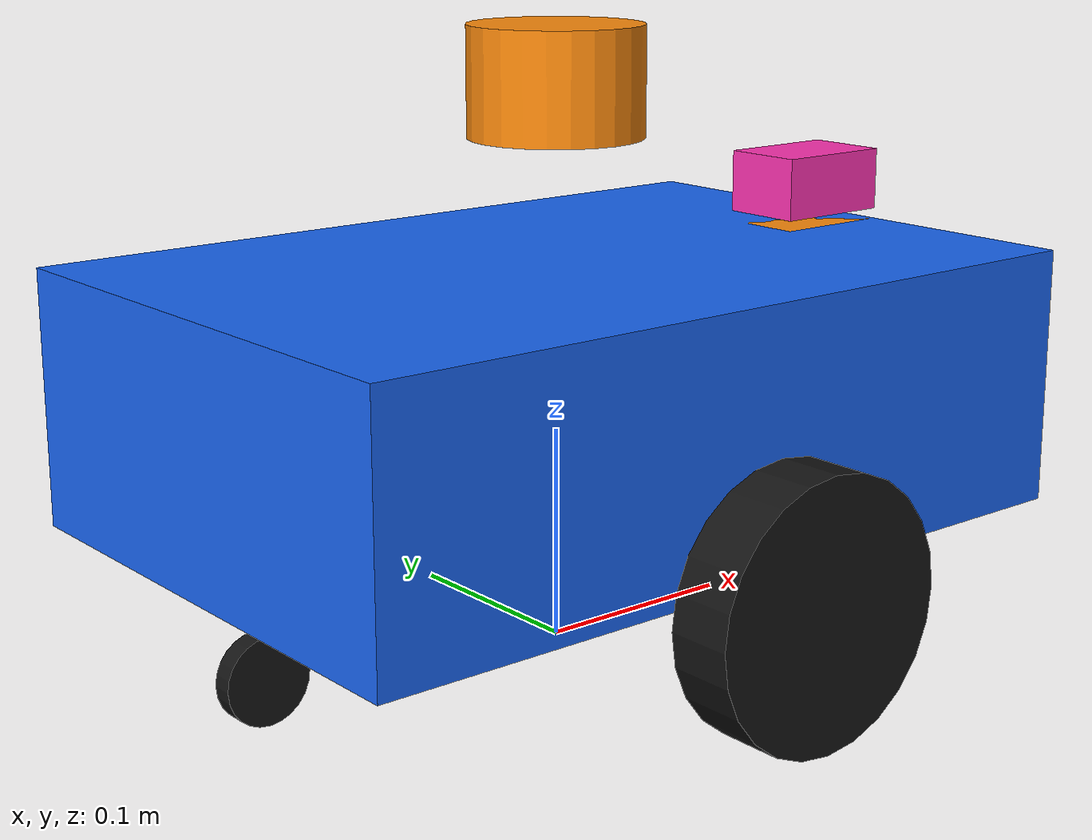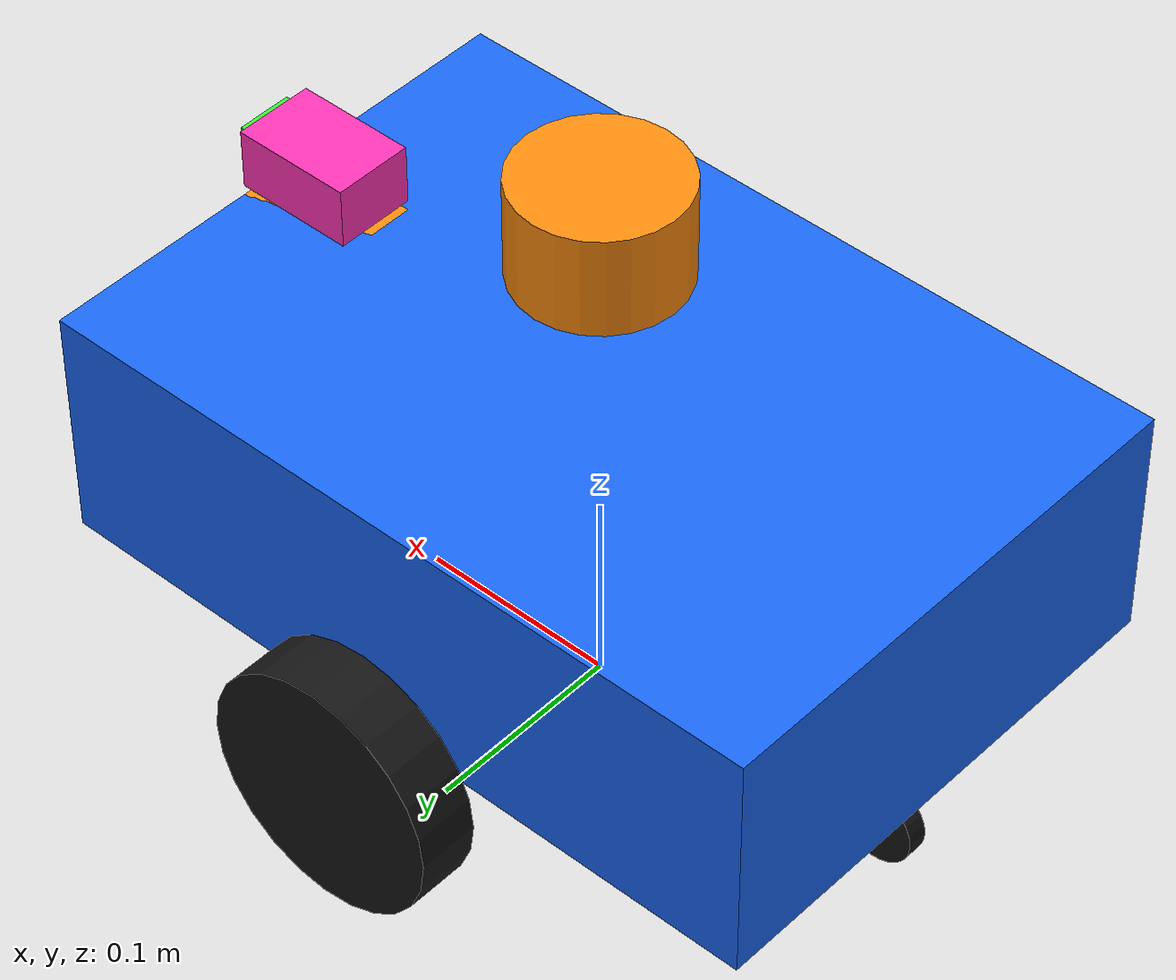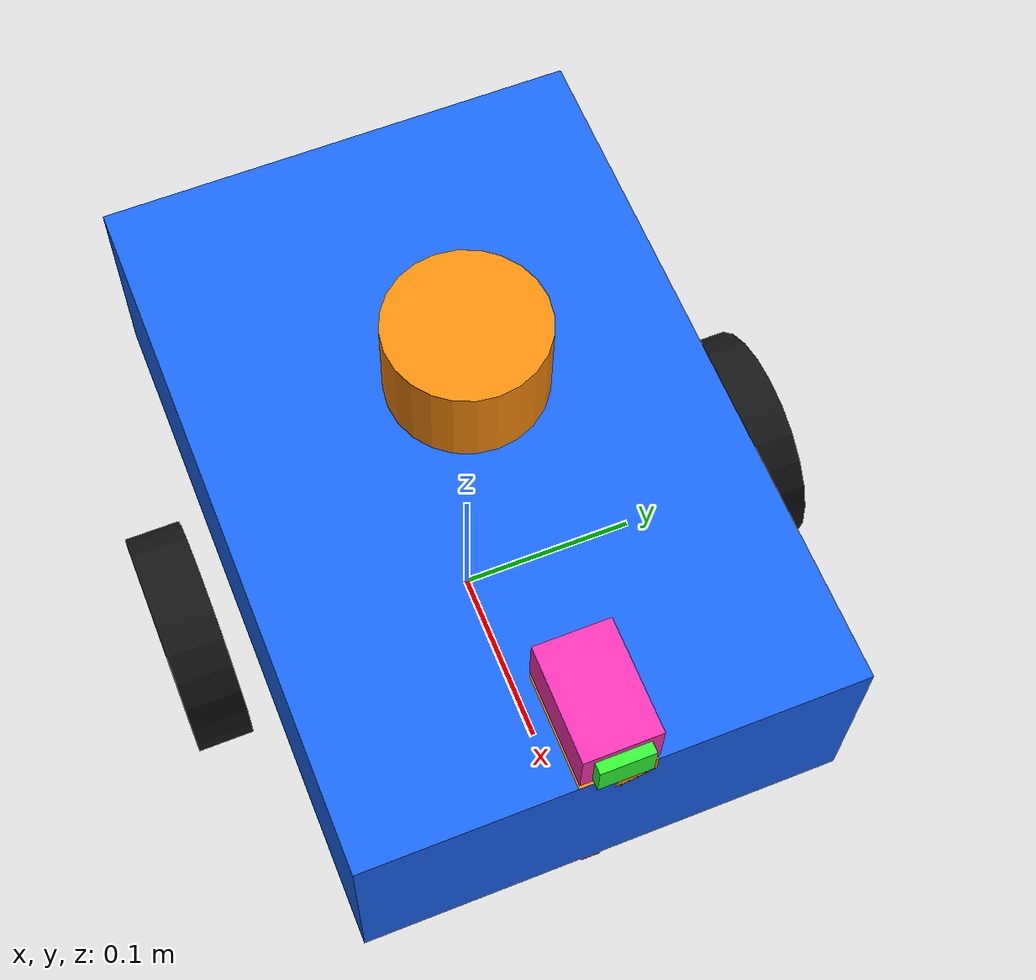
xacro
<?xml version="1.0"?>
<robot xmlns:xacro="http://www.ros.org/wiki/xacro" name="robot">

  <!-- ======= Parameters Body ======= -->
  <xacro:property name="base_length" value="0.38"/>
  <xacro:property name="base_width"  value="0.26"/>
  <xacro:property name="base_height" value="0.12"/>

  <xacro:property name="wheel_radius" value="0.06"/>
  <xacro:property name="wheel_width"  value="0.03"/>

  <xacro:property name="base_link_z" value="${wheel_radius + base_height/2.0}"/>

  <xacro:property name="wheel_separation" value="0.32"/>

  <xacro:property name="lidar_x" value="0.14"/>
  <xacro:property name="lidar_z" value="${base_height/2.0 + 0.08}"/>

  <xacro:property name="caster_radius" value="0.02"/>
  <xacro:property name="caster_x" value="${base_length/2.0 - caster_radius - 0.01}"/>
  <xacro:property name="caster_z" value="${-base_height/2.0 - wheel_radius + caster_radius}"/>

  <xacro:property name="camera_x" value="${base_length/2.0 - 0.03}"/>
  <xacro:property name="camera_y" value="0.0"/>
  <xacro:property name="camera_z" value="${base_height/2.0 + 0.02}"/>

  <!-- ======= Materials  ======= -->
  <material name="body_blue">
    <color rgba="0.10 0.40 0.95 1.0"/>
  </material>

  <material name="accent_orange">
    <color rgba="1.00 0.55 0.05 1.0"/>
  </material>

  <material name="wheel_black">
    <color rgba="0.08 0.08 0.08 1.0"/>
  </material>

  <material name="camera_pink">
    <color rgba="1.0 0.2 0.7 1.0"/>
  </material>

  <material name="camera_green">
    <color rgba="0.2 1.0 0.2 1.0"/>
  </material>

  <!-- ======= Dummy root  ======= -->
  <link name="base_footprint"/>

  <joint name="base_footprint_to_base_link" type="fixed">
    <origin xyz="0 0 ${base_link_z}" rpy="0 0 0"/>
    <parent link="base_footprint"/>
    <child link="base_link"/>
  </joint>

  <!-- ======= Chassis  ======= -->
  <link name="base_link">
    <visual>
      <origin xyz="0 0 0" rpy="0 0 0"/>
      <geometry>
        <box size="${base_length} ${base_width} ${base_height}"/>
      </geometry>
      <material name="body_blue"/>
    </visual>

    <visual name="front_marker">
      <origin xyz="${base_length/2.0 - 0.03} 0 ${base_height/2.0 - 0.02}" rpy="0 0 0"/>
      <geometry>
        <box size="0.06 0.04 0.04"/>
      </geometry>
      <material name="accent_orange"/>
    </visual>

    <collision>
      <origin xyz="0 0 0" rpy="0 0 0"/>
      <geometry>
        <box size="${base_length-0.04} ${base_width-0.04} ${base_height-0.04}"/>
      </geometry>
    </collision>

    <inertial>
      <origin xyz="0 0 0" rpy="0 0 0"/>
      <mass value="10.0"/>
      <inertia ixx="0.12" ixy="0.0" ixz="0.0" iyy="0.18" iyz="0.0" izz="0.22"/>
    </inertial>
  </link>

  <!-- ======= Wheels ======= -->
  <link name="left_wheel_link">
    <visual>
      <origin xyz="0 0 0" rpy="-1.57079632679 0 0"/>
      <geometry>
        <cylinder radius="${wheel_radius}" length="${wheel_width}"/>
      </geometry>
      <material name="wheel_black"/>
    </visual>
    <collision>
      <origin xyz="0 0 0" rpy="-1.57079632679 0 0"/>
      <geometry>
        <cylinder radius="${wheel_radius}" length="${wheel_width}"/>
      </geometry>
    </collision>
    <inertial>
      <mass value="0.8"/>
      <inertia ixx="0.0010" ixy="0.0" ixz="0.0" iyy="0.0010" iyz="0.0" izz="0.0010"/>
    </inertial>
  </link>

  <link name="right_wheel_link">
    <visual>
      <origin xyz="0 0 0" rpy="-1.57079632679 0 0"/>
      <geometry>
        <cylinder radius="${wheel_radius}" length="${wheel_width}"/>
      </geometry>
      <material name="wheel_black"/>
    </visual>
    <collision>
      <origin xyz="0 0 0" rpy="-1.57079632679 0 0"/>
      <geometry>
        <cylinder radius="${wheel_radius}" length="${wheel_width}"/>
      </geometry>
    </collision>
    <inertial>
      <mass value="0.8"/>
      <inertia ixx="0.0010" ixy="0.0" ixz="0.0" iyy="0.0010" iyz="0.0" izz="0.0010"/>
    </inertial>
  </link>

  <!-- Caster swivel link -->
  <link name="caster_swivel_front_link">
    <inertial>
      <origin xyz="0 0 0" rpy="0 0 0"/>
      <mass value="0.05"/>
      <inertia ixx="1e-5" ixy="0" ixz="0" iyy="1e-5" iyz="0" izz="1e-5"/>
    </inertial>
  </link>

  <link name="caster_swivel_back_link">
    <inertial>
      <origin xyz="0 0 0" rpy="0 0 0"/>
      <mass value="0.05"/>
      <inertia ixx="1e-5" ixy="0" ixz="0" iyy="1e-5" iyz="0" izz="1e-5"/>
    </inertial>
  </link>

  <!-- Caster wheel -->
  <link name="caster_wheel_front_link">
    <visual>
      <origin xyz="0 0 0" rpy="-1.57079632679 0 0"/>
      <geometry>
        <cylinder radius="${caster_radius}" length="0.01"/>
      </geometry>
      <material name="wheel_black"/>
    </visual>
    <collision>
      <origin xyz="0 0 0" rpy="-1.57079632679 0 0"/>
      <geometry>
        <cylinder radius="${caster_radius}" length="0.01"/>
      </geometry>
    </collision>
    <inertial>
      <mass value="0.1"/>
      <inertia ixx="1e-5" ixy="0" ixz="0" iyy="1e-5" iyz="0" izz="1e-5"/>
    </inertial>
  </link>

   <link name="caster_wheel_back_link">
    <visual>
      <origin xyz="0 0 0" rpy="-1.57079632679 0 0"/>
      <geometry>
        <cylinder radius="${caster_radius}" length="0.01"/>
      </geometry>
      <material name="wheel_black"/>
    </visual>
    <collision>
      <origin xyz="0 0 0" rpy="-1.57079632679 0 0"/>
      <geometry>
        <cylinder radius="${caster_radius}" length="0.01"/>
      </geometry>
    </collision>
    <inertial>
      <mass value="0.1"/>
      <inertia ixx="1e-5" ixy="0" ixz="0" iyy="1e-5" iyz="0" izz="1e-5"/>
    </inertial>
  </link>

  <!-- Wheel centers are at z = -base_height/2 so absolute z = wheel_radius -->
  <joint name="left_wheel_joint" type="continuous">
    <origin xyz="0 ${wheel_separation/2.0} -${base_height/2.0}" rpy="0 0 0"/>
    <parent link="base_link"/>
    <child link="left_wheel_link"/>
    <axis xyz="0 1 0"/>
  </joint>

  <joint name="right_wheel_joint" type="continuous">
    <origin xyz="0 -${wheel_separation/2.0} -${base_height/2.0}" rpy="0 0 0"/>
    <parent link="base_link"/>
    <child link="right_wheel_link"/>
    <axis xyz="0 1 0"/>
  </joint>

  <joint name="caster_swivel_front_joint" type="continuous">
    <origin xyz="${caster_x} 0 ${caster_z}" rpy="0 0 0"/>
    <parent link="base_link"/>
    <child link="caster_swivel_front_link"/>
    <axis xyz="0 0 1"/>
  </joint>

   <joint name="caster_swivel_back_joint" type="continuous">
    <origin xyz="-${caster_x} 0 ${caster_z}" rpy="0 0 0"/>
    <parent link="base_link"/>
    <child link="caster_swivel_back_link"/>
    <axis xyz="0 0 1"/>
  </joint>

  <joint name="caster_wheel_front_joint" type="continuous">
    <origin xyz="0 0 0" rpy="0 0 0"/>
    <parent link="caster_swivel_front_link"/>
    <child link="caster_wheel_front_link"/>
    <axis xyz="0 1 0"/>
  </joint>

  <joint name="caster_wheel_back_joint" type="continuous">
    <origin xyz="0 0 0" rpy="0 0 0"/>
    <parent link="caster_swivel_back_link"/>
    <child link="caster_wheel_back_link"/>
    <axis xyz="0 1 0"/>
  </joint>

  <!-- ======= LiDAR  ======= -->
  <link name="lidar_link">
    <visual>
      <origin xyz="0 0 0" rpy="0 0 0"/>
      <geometry>
        <cylinder radius="0.04" length="0.05"/>
      </geometry>
      <material name="accent_orange"/>
    </visual>
    <collision>
      <origin xyz="0 0 0" rpy="0 0 0"/>
      <geometry>
        <cylinder radius="0.04" length="0.05"/>
      </geometry>
    </collision>
    <inertial>
      <mass value="0.25"/>
      <inertia ixx="0.0002" ixy="0.0" ixz="0.0" iyy="0.0002" iyz="0.0" izz="0.0002"/>
    </inertial>
  </link>

  <joint name="lidar_joint" type="fixed">
    <origin xyz="0 0 ${lidar_z}" rpy="0 0 0"/>
    <parent link="base_link"/>
    <child link="lidar_link"/>
  </joint>

  <!-- ======= Front Camera ======= -->
  <link name="camera_link">
    <visual>
      <origin xyz="0 0 0" rpy="0 0 0"/>
      <geometry>
        <box size="0.06 0.04 0.03"/>
      </geometry>
      <material name="camera_pink"/>
    </visual>

    <collision>
      <origin xyz="0 0 0" rpy="0 0 0"/>
      <geometry>
        <box size="0.06 0.04 0.03"/>
      </geometry>
    </collision>

    <inertial>
      <origin xyz="0 0 0" rpy="0 0 0"/>
      <mass value="0.18"/>
      <inertia ixx="0.00018" ixy="0" ixz="0" iyy="0.00018" iyz="0" izz="0.00018"/>
    </inertial>
  </link>

  <link name="camera_optical_link">
    <visual>
      <origin xyz="0 0 0" rpy="0 0 0"/>
      <geometry>
        <box size="0.006 0.028 0.021"/>
      </geometry>
      <material name="camera_green"/>
    </visual>

    <collision>
      <origin xyz="0 0 0" rpy="0 0 0"/>
      <geometry>
        <box size="0.006 0.028 0.021"/>
      </geometry>
    </collision>

    <inertial>
      <origin xyz="0 0 0" rpy="0 0 0"/>
      <mass value="0.02"/>
      <inertia ixx="1e-5" ixy="0" ixz="0" iyy="1e-5" iyz="0" izz="1e-5"/>
    </inertial>
  </link>

  <joint name="camera_joint" type="fixed">
    <origin xyz="${camera_x} ${camera_y} ${camera_z}" rpy="0 0 0"/>
    <parent link="base_link"/>
    <child link="camera_link"/>
  </joint>

  <joint name="camera_optical_joint" type="fixed">
    <origin xyz="0.033 0 0" rpy="0 0 0"/>
    <parent link="camera_link"/>
    <child link="camera_optical_link"/>
  </joint>

  <!-- ======= Gazebo-specific ======= -->
  <gazebo reference="base_link">
    <material>Gazebo/Blue</material>
    <mu1>0.8</mu1>
    <mu2>0.8</mu2>
  </gazebo>

  <gazebo reference="left_wheel_link">
    <material>Gazebo/Black</material>
    <mu1>1.0</mu1>
    <mu2>1.0</mu2>
  </gazebo>

  <gazebo reference="right_wheel_link">
    <material>Gazebo/Black</material>
    <mu1>1.0</mu1>
    <mu2>1.0</mu2>
  </gazebo>

  <gazebo reference="caster_wheel_front_link">
    <material>Gazebo/Black</material>
    <mu1>0.2</mu1>
    <mu2>0.2</mu2>
  </gazebo>

  <gazebo reference="caster_wheel_back_link">
    <material>Gazebo/Black</material>
    <mu1>0.2</mu1>
    <mu2>0.2</mu2>
  </gazebo>

  <gazebo reference="camera_link">
    <material>Gazebo/Purple</material>
  </gazebo>

  <gazebo reference="camera_optical_link">
    <material>Gazebo/Green</material>
  </gazebo>

  <!-- 2D LiDAR sensor (ray) + gazebo_ros_ray_sensor plugin publishing LaserScan on /robot/scan -->
  <gazebo reference="lidar_link">
    <material>Gazebo/Orange</material>

    <sensor name="lidar" type="ray">
      <always_on>true</always_on>
      <update_rate>10</update_rate>
      <visualize>false</visualize>

      <ray>
        <scan>
          <horizontal>
            <samples>120</samples>
            <resolution>1</resolution>
            <min_angle>-3.14159265359</min_angle>
            <max_angle>3.14159265359</max_angle>
          </horizontal>
        </scan>
        <range>
          <min>0.12</min>
          <max>10.0</max>
          <resolution>0.01</resolution>
        </range>
      </ray>

      <plugin name="gazebo_ros_ray_sensor" filename="libgazebo_ros_ray_sensor.so">
        <ros>
          <namespace>/robot</namespace>
          <remapping>~/out:=scan</remapping>
        </ros>
        <output_type>sensor_msgs/LaserScan</output_type>
        <frame_name>lidar_link</frame_name>
      </plugin>
    </sensor>
  </gazebo>

  <!-- Differential drive plugin: /robot/cmd_vel -> /robot/odom -->
  <gazebo>
    <plugin name="gazebo_ros_diff_drive" filename="libgazebo_ros_diff_drive.so">
      <ros>
        <namespace>/robot</namespace>
      </ros>

      <update_rate>50</update_rate>

      <left_joint>left_wheel_joint</left_joint>
      <right_joint>right_wheel_joint</right_joint>

      <wheel_separation>${wheel_separation}</wheel_separation>
      <wheel_diameter>${2.0*wheel_radius}</wheel_diameter>

      <max_wheel_torque>15.0</max_wheel_torque>
      <max_wheel_acceleration>10.0</max_wheel_acceleration>

      <command_topic>cmd_vel</command_topic>

      <publish_odom>true</publish_odom>
      <publish_odom_tf>true</publish_odom_tf>
      <publish_wheel_tf>false</publish_wheel_tf>

      <odometry_topic>odom</odometry_topic>
      <odometry_frame>odom</odometry_frame>
      <robot_base_frame>base_footprint</robot_base_frame>
    </plugin>
  </gazebo>

  <!-- Gazebo joint_state_publisher (tf) -->
  <gazebo>
    <plugin name="gazebo_ros_joint_state_publisher"
            filename="libgazebo_ros_joint_state_publisher.so">
      <ros>
        <namespace>/robot</namespace>
      </ros>
      <update_rate>50</update_rate>
      <joint_name>left_wheel_joint</joint_name>
      <joint_name>right_wheel_joint</joint_name>
      <joint_name>caster_swivel_front_joint</joint_name>
      <joint_name>caster_wheel_front_joint</joint_name>
      <joint_name>caster_swivel_back_joint</joint_name>
      <joint_name>caster_wheel_back_joint</joint_name>
    </plugin>
  </gazebo>

  <!-- Gazebo Camera -->
  <gazebo reference="camera_link">
    <sensor name="front_camera" type="camera">
      <always_on>true</always_on>
      <update_rate>15</update_rate>
      <visualize>false</visualize>

      <camera name="front_camera">
        <horizontal_fov>1.047</horizontal_fov> <!-- ~60 deg -->
        <image>
          <width>720</width>
          <height>576</height>
          <format>R8G8B8</format>
        </image>
        <clip>
          <near>0.05</near>
          <far>30.0</far>
        </clip>
        <noise>
          <type>gaussian</type>
          <mean>0.0</mean>
          <stddev>0.002</stddev>
        </noise>
      </camera>

      <!-- Publishes /robot/camera/image_raw and /robot/camera/camera_info -->
      <plugin name="gazebo_ros_camera" filename="libgazebo_ros_camera.so">
        <ros>
          <namespace>/robot</namespace>
        </ros>

        <camera_name>camera</camera_name>
        <frame_name>camera_link</frame_name>

        <image_topic_name>camera/image_raw</image_topic_name>
        <camera_info_topic_name>camera/camera_info</camera_info_topic_name>
      </plugin>
    </sensor>
  </gazebo>

</robot>
